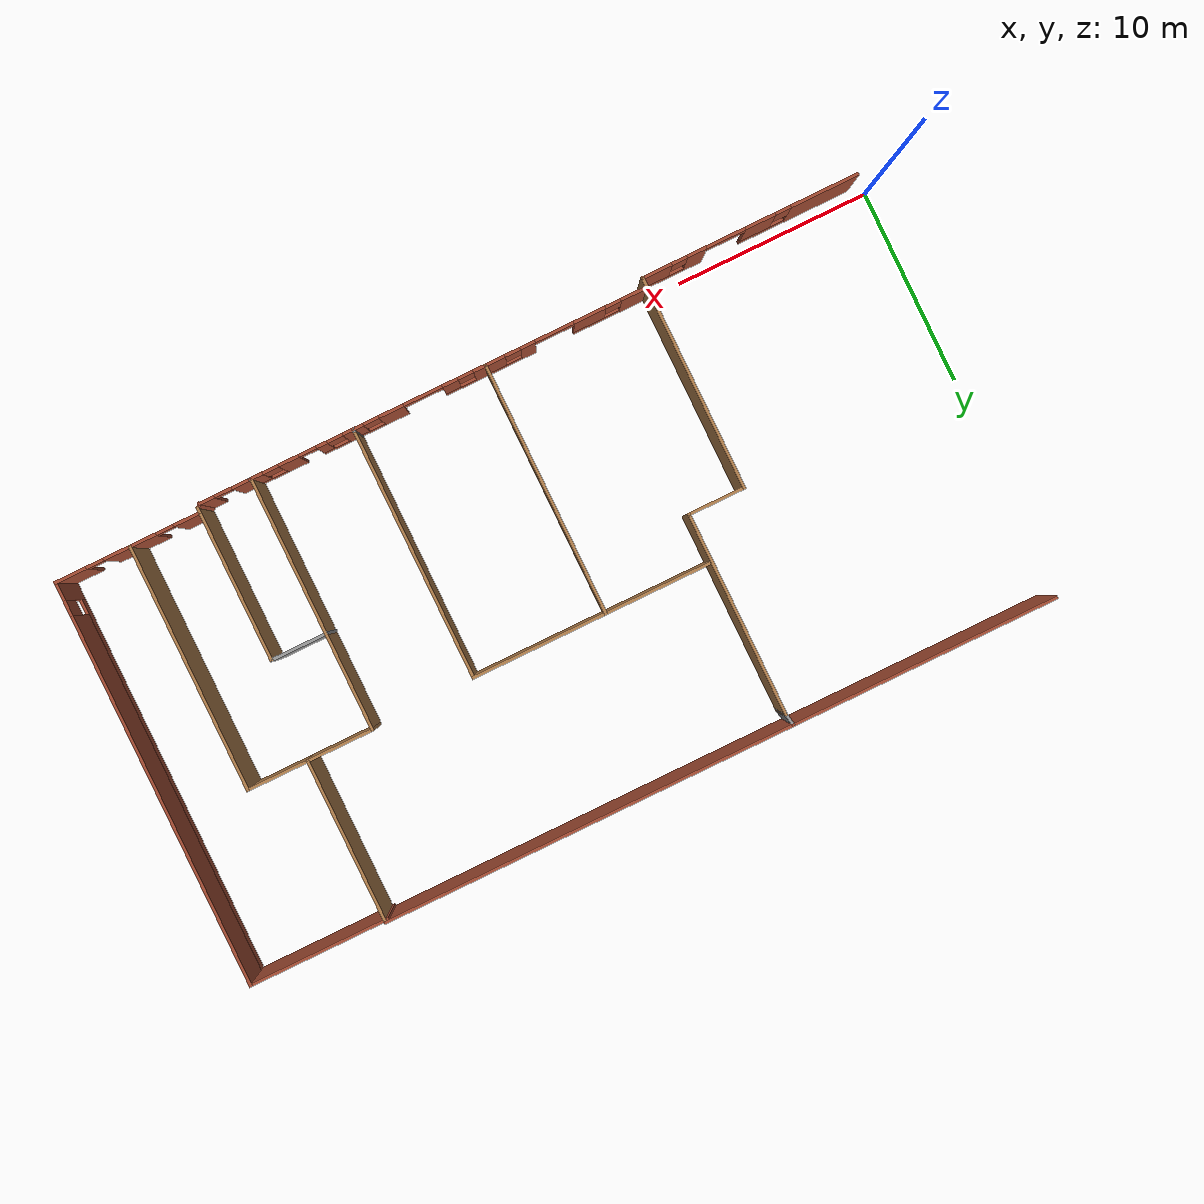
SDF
<sdf version="1.6">
 <model name="vital">
  <pose>12.2387 -3.95497 0 0 -0 0</pose>
  <link name="Wall_50">
   <pose>-5.91922 3.36796 0 0 -0 0</pose>
   <visual name="Wall_50_Visual_0">
    <pose>-3.87066 0 1.25 0 -0 0</pose>
    <geometry><box><size>3.50867 0.15 2.5</size></box></geometry>
    <material>
     <script><uri>file://media/materials/scripts/gazebo.material</uri><name>Gazebo/Bricks</name></script>
     <ambient>1 1 1 1</ambient>
    </material>
   </visual>
   <collision name="Wall_50_Collision_0">
    <geometry><box><size>3.50867 0.15 2.5</size></box></geometry>
    <pose>-3.87066 0 1.25 0 -0 0</pose>
   </collision>
   <visual name="Wall_50_Visual_1">
    <pose>2.75347 0 1.25 0 -0 0</pose>
    <geometry><box><size>1.00133 0.15 2.5</size></box></geometry>
    <material>
     <script><uri>file://media/materials/scripts/gazebo.material</uri><name>Gazebo/Bricks</name></script>
     <ambient>1 1 1 1</ambient>
    </material>
   </visual>
   <collision name="Wall_50_Collision_1">
    <geometry><box><size>1.00133 0.15 2.5</size></box></geometry>
    <pose>2.75347 0 1.25 0 -0 0</pose>
   </collision>
   <visual name="Wall_50_Visual_2">
    <pose>-0.931761 0 0.25 0 -0 0</pose>
    <geometry><box><size>2.36914 0.15 0.5</size></box></geometry>
    <material>
     <script><uri>file://media/materials/scripts/gazebo.material</uri><name>Gazebo/Bricks</name></script>
     <ambient>1 1 1 1</ambient>
    </material>
   </visual>
   <collision name="Wall_50_Collision_2">
    <geometry><box><size>2.36914 0.15 0.5</size></box></geometry>
    <pose>-0.931761 0 0.25 0 -0 0</pose>
   </collision>
   <visual name="Wall_50_Visual_3">
    <pose>4.43957 0 0.25 0 -0 0</pose>
    <geometry><box><size>2.37087 0.15 0.5</size></box></geometry>
    <material>
     <script><uri>file://media/materials/scripts/gazebo.material</uri><name>Gazebo/Bricks</name></script>
     <ambient>1 1 1 1</ambient>
    </material>
   </visual>
   <collision name="Wall_50_Collision_3">
    <geometry><box><size>2.37087 0.15 0.5</size></box></geometry>
    <pose>4.43957 0 0.25 0 -0 0</pose>
   </collision>
   <visual name="Wall_50_Visual_4">
    <pose>-0.531761 0 1.5 0 -0 0</pose>
    <geometry><box><size>1.56914 0.15 2</size></box></geometry>
    <material>
     <script><uri>file://media/materials/scripts/gazebo.material</uri><name>Gazebo/Bricks</name></script>
     <ambient>1 1 1 1</ambient>
    </material>
   </visual>
   <collision name="Wall_50_Collision_4">
    <geometry><box><size>1.56914 0.15 2</size></box></geometry>
    <pose>-0.531761 0 1.5 0 -0 0</pose>
   </collision>
   <visual name="Wall_50_Visual_5">
    <pose>-0.531761 0 1.5 0 -0 0</pose>
    <geometry><box><size>1.56914 0.15 2</size></box></geometry>
    <material>
     <script><uri>file://media/materials/scripts/gazebo.material</uri><name>Gazebo/Bricks</name></script>
     <ambient>1 1 1 1</ambient>
    </material>
   </visual>
   <collision name="Wall_50_Collision_5">
    <geometry><box><size>1.56914 0.15 2</size></box></geometry>
    <pose>-0.531761 0 1.5 0 -0 0</pose>
   </collision>
   <visual name="Wall_50_Visual_6">
    <pose>4.83957 0 1.5 0 -0 0</pose>
    <geometry><box><size>1.57087 0.15 2</size></box></geometry>
    <material>
     <script><uri>file://media/materials/scripts/gazebo.material</uri><name>Gazebo/Bricks</name></script>
     <ambient>1 1 1 1</ambient>
    </material>
   </visual>
   <collision name="Wall_50_Collision_6">
    <geometry><box><size>1.57087 0.15 2</size></box></geometry>
    <pose>4.83957 0 1.5 0 -0 0</pose>
   </collision>
   <visual name="Wall_50_Visual_7">
    <pose>-1.71633 0 1.9 0 -0 0</pose>
    <geometry><box><size>0.8 0.15 1.2</size></box></geometry>
    <material>
     <script><uri>file://media/materials/scripts/gazebo.material</uri><name>Gazebo/Bricks</name></script>
     <ambient>1 1 1 1</ambient>
    </material>
   </visual>
   <collision name="Wall_50_Collision_7">
    <geometry><box><size>0.8 0.15 1.2</size></box></geometry>
    <pose>-1.71633 0 1.9 0 -0 0</pose>
   </collision>
   <visual name="Wall_50_Visual_8">
    <pose>3.65413 0 1.9 0 -0 0</pose>
    <geometry><box><size>0.8 0.15 1.2</size></box></geometry>
    <material>
     <script><uri>file://media/materials/scripts/gazebo.material</uri><name>Gazebo/Bricks</name></script>
     <ambient>1 1 1 1</ambient>
    </material>
   </visual>
   <collision name="Wall_50_Collision_8">
    <geometry><box><size>0.8 0.15 1.2</size></box></geometry>
    <pose>3.65413 0 1.9 0 -0 0</pose>
   </collision>
   <visual name="Wall_50_Visual_9">
    <pose>1.25281 0 2.25 0 -0 0</pose>
    <geometry><box><size>2 0.15 0.5</size></box></geometry>
    <material>
     <script><uri>file://media/materials/scripts/gazebo.material</uri><name>Gazebo/Bricks</name></script>
     <ambient>1 1 1 1</ambient>
    </material>
   </visual>
   <collision name="Wall_50_Collision_9">
    <geometry><box><size>2 0.15 0.5</size></box></geometry>
    <pose>1.25281 0 2.25 0 -0 0</pose>
   </collision>
   <visual name="Wall_50_Visual_10">
    <pose>1.25281 0 2.25 0 -0 0</pose>
    <geometry><box><size>2 0.15 0.5</size></box></geometry>
    <material>
     <script><uri>file://media/materials/scripts/gazebo.material</uri><name>Gazebo/Bricks</name></script>
     <ambient>1 1 1 1</ambient>
    </material>
   </visual>
   <collision name="Wall_50_Collision_10">
    <geometry><box><size>2 0.15 0.5</size></box></geometry>
    <pose>1.25281 0 2.25 0 -0 0</pose>
   </collision>
  </link>
  <link name="Wall_51">
   <collision name="Wall_51_Collision">
    <geometry><box><size>11 0.15 2.5</size></box></geometry>
    <pose>0 0 1.25 0 -0 0</pose>
   </collision>
   <visual name="Wall_51_Visual">
    <pose>0 0 1.25 0 -0 0</pose>
    <geometry><box><size>11 0.15 2.5</size></box></geometry>
    <material>
     <script><uri>file://media/materials/scripts/gazebo.material</uri><name>Gazebo/Wood</name></script>
     <ambient>1 1 1 1</ambient>
    </material>
   </visual>
   <pose>-0.369221 8.79296 0 0 -0 1.5708</pose>
  </link>
  <link name="Wall_52">
   <collision name="Wall_52_Collision">
    <geometry><box><size>3 0.15 2.5</size></box></geometry>
    <pose>0 0 1.25 0 -0 0</pose>
   </collision>
   <visual name="Wall_52_Visual">
    <pose>0 0 1.25 0 -0 0</pose>
    <geometry><box><size>3 0.15 2.5</size></box></geometry>
    <material>
     <script><uri>file://media/materials/scripts/gazebo.material</uri><name>Gazebo/Wood</name></script>
     <ambient>1 1 1 1</ambient>
    </material>
   </visual>
   <pose>1.05578 14.218 0 0 -0 0</pose>
  </link>
  <link name="Wall_53">
   <collision name="Wall_53_Collision">
    <geometry><box><size>10.5 0.15 2.5</size></box></geometry>
    <pose>0 0 1.25 0 -0 0</pose>
   </collision>
   <visual name="Wall_53_Visual">
    <pose>0 0 1.25 0 -0 0</pose>
    <geometry><box><size>10.5 0.15 2.5</size></box></geometry>
    <material>
     <script><uri>file://media/materials/scripts/gazebo.material</uri><name>Gazebo/Wood</name></script>
     <ambient>1 1 1 1</ambient>
    </material>
   </visual>
   <pose>2.48078 19.393 0 0 -0 1.5708</pose>
  </link>
  <link name="Wall_60">
   <collision name="Wall_60_Collision">
    <geometry><box><size>13.75 0.15 2.5</size></box></geometry>
    <pose>0 0 1.25 0 -0 0</pose>
   </collision>
   <visual name="Wall_60_Visual">
    <pose>0 0 1.25 0 -0 0</pose>
    <geometry><box><size>13.75 0.15 2.5</size></box></geometry>
    <material>
     <script><uri>file://media/materials/scripts/gazebo.material</uri><name>Gazebo/Bricks</name></script>
     <ambient>1 1 1 1</ambient>
    </material>
   </visual>
   <pose>-4.41922 25.168 0 0 -0 0</pose>
  </link>
  <link name="Wall_62">
   <collision name="Wall_62_Collision">
    <geometry><box><size>0.758276 0.15 2.5</size></box></geometry>
    <pose>0 0 1.25 0 -0 0</pose>
   </collision>
   <visual name="Wall_62_Visual">
    <pose>0 0 1.25 0 -0 0</pose>
    <geometry><box><size>0.758276 0.15 2.5</size></box></geometry>
    <material>
     <script><uri>file://media/materials/scripts/gazebo.material</uri><name>Gazebo/Grey</name></script>
     <ambient>1 1 1 1</ambient>
    </material>
   </visual>
   <pose>2.43078 24.868 0 0 -0 1.73595</pose>
  </link>
  <link name="Wall_64">
   <pose>3.81101 3.83144 0 0 -0 0</pose>
   <visual name="Wall_64_Visual_0">
    <pose>-3.53221 0 1.25 0 -0 0</pose>
    <geometry><box><size>1.43558 0.15 2.5</size></box></geometry>
    <material>
     <script><uri>file://media/materials/scripts/gazebo.material</uri><name>Gazebo/Bricks</name></script>
     <ambient>1 1 1 1</ambient>
    </material>
   </visual>
   <collision name="Wall_64_Collision_0">
    <geometry><box><size>1.43558 0.15 2.5</size></box></geometry>
    <pose>-3.53221 0 1.25 0 -0 0</pose>
   </collision>
   <visual name="Wall_64_Visual_1">
    <pose>2.011 0 1.25 0 -0 0</pose>
    <geometry><box><size>0.764597 0.15 2.5</size></box></geometry>
    <material>
     <script><uri>file://media/materials/scripts/gazebo.material</uri><name>Gazebo/Bricks</name></script>
     <ambient>1 1 1 1</ambient>
    </material>
   </visual>
   <collision name="Wall_64_Collision_1">
    <geometry><box><size>0.764597 0.15 2.5</size></box></geometry>
    <pose>2.011 0 1.25 0 -0 0</pose>
   </collision>
   <visual name="Wall_64_Visual_2">
    <pose>-1.59286 0 0.25 0 -0 0</pose>
    <geometry><box><size>2.44312 0.15 0.5</size></box></geometry>
    <material>
     <script><uri>file://media/materials/scripts/gazebo.material</uri><name>Gazebo/Bricks</name></script>
     <ambient>1 1 1 1</ambient>
    </material>
   </visual>
   <collision name="Wall_64_Collision_2">
    <geometry><box><size>2.44312 0.15 0.5</size></box></geometry>
    <pose>-1.59286 0 0.25 0 -0 0</pose>
   </collision>
   <visual name="Wall_64_Visual_3">
    <pose>3.32165 0 0.25 0 -0 0</pose>
    <geometry><box><size>1.8567 0.15 0.5</size></box></geometry>
    <material>
     <script><uri>file://media/materials/scripts/gazebo.material</uri><name>Gazebo/Bricks</name></script>
     <ambient>1 1 1 1</ambient>
    </material>
   </visual>
   <collision name="Wall_64_Collision_3">
    <geometry><box><size>1.8567 0.15 0.5</size></box></geometry>
    <pose>3.32165 0 0.25 0 -0 0</pose>
   </collision>
   <visual name="Wall_64_Visual_4">
    <pose>-1.19286 0 1.5 0 -0 0</pose>
    <geometry><box><size>1.64312 0.15 2</size></box></geometry>
    <material>
     <script><uri>file://media/materials/scripts/gazebo.material</uri><name>Gazebo/Bricks</name></script>
     <ambient>1 1 1 1</ambient>
    </material>
   </visual>
   <collision name="Wall_64_Collision_4">
    <geometry><box><size>1.64312 0.15 2</size></box></geometry>
    <pose>-1.19286 0 1.5 0 -0 0</pose>
   </collision>
   <visual name="Wall_64_Visual_5">
    <pose>-1.19286 0 1.5 0 -0 0</pose>
    <geometry><box><size>1.64312 0.15 2</size></box></geometry>
    <material>
     <script><uri>file://media/materials/scripts/gazebo.material</uri><name>Gazebo/Bricks</name></script>
     <ambient>1 1 1 1</ambient>
    </material>
   </visual>
   <collision name="Wall_64_Collision_5">
    <geometry><box><size>1.64312 0.15 2</size></box></geometry>
    <pose>-1.19286 0 1.5 0 -0 0</pose>
   </collision>
   <visual name="Wall_64_Visual_6">
    <pose>3.72165 0 1.5 0 -0 0</pose>
    <geometry><box><size>1.0567 0.15 2</size></box></geometry>
    <material>
     <script><uri>file://media/materials/scripts/gazebo.material</uri><name>Gazebo/Bricks</name></script>
     <ambient>1 1 1 1</ambient>
    </material>
   </visual>
   <collision name="Wall_64_Collision_6">
    <geometry><box><size>1.0567 0.15 2</size></box></geometry>
    <pose>3.72165 0 1.5 0 -0 0</pose>
   </collision>
   <visual name="Wall_64_Visual_7">
    <pose>-2.41442 0 1.9 0 -0 0</pose>
    <geometry><box><size>0.8 0.15 1.2</size></box></geometry>
    <material>
     <script><uri>file://media/materials/scripts/gazebo.material</uri><name>Gazebo/Bricks</name></script>
     <ambient>1 1 1 1</ambient>
    </material>
   </visual>
   <collision name="Wall_64_Collision_7">
    <geometry><box><size>0.8 0.15 1.2</size></box></geometry>
    <pose>-2.41442 0 1.9 0 -0 0</pose>
   </collision>
   <visual name="Wall_64_Visual_8">
    <pose>2.7933 0 1.9 0 -0 0</pose>
    <geometry><box><size>0.8 0.15 1.2</size></box></geometry>
    <material>
     <script><uri>file://media/materials/scripts/gazebo.material</uri><name>Gazebo/Bricks</name></script>
     <ambient>1 1 1 1</ambient>
    </material>
   </visual>
   <collision name="Wall_64_Collision_8">
    <geometry><box><size>0.8 0.15 1.2</size></box></geometry>
    <pose>2.7933 0 1.9 0 -0 0</pose>
   </collision>
   <visual name="Wall_64_Visual_9">
    <pose>0.6287 0 2.25 0 -0 0</pose>
    <geometry><box><size>2 0.15 0.5</size></box></geometry>
    <material>
     <script><uri>file://media/materials/scripts/gazebo.material</uri><name>Gazebo/Bricks</name></script>
     <ambient>1 1 1 1</ambient>
    </material>
   </visual>
   <collision name="Wall_64_Collision_9">
    <geometry><box><size>2 0.15 0.5</size></box></geometry>
    <pose>0.6287 0 2.25 0 -0 0</pose>
   </collision>
   <visual name="Wall_64_Visual_10">
    <pose>0.6287 0 2.25 0 -0 0</pose>
    <geometry><box><size>2 0.15 0.5</size></box></geometry>
    <material>
     <script><uri>file://media/materials/scripts/gazebo.material</uri><name>Gazebo/Bricks</name></script>
     <ambient>1 1 1 1</ambient>
    </material>
   </visual>
   <collision name="Wall_64_Collision_10">
    <geometry><box><size>2 0.15 0.5</size></box></geometry>
    <pose>0.6287 0 2.25 0 -0 0</pose>
   </collision>
  </link>
  <link name="Wall_65">
   <collision name="Wall_65_Collision">
    <geometry><box><size>13 0.15 2.5</size></box></geometry>
    <pose>0 0 1.25 0 -0 0</pose>
   </collision>
   <visual name="Wall_65_Visual">
    <pose>0 0 1.25 0 -0 0</pose>
    <geometry><box><size>13 0.15 2.5</size></box></geometry>
    <material>
     <script><uri>file://media/materials/scripts/gazebo.material</uri><name>Gazebo/Wood</name></script>
     <ambient>1 1 1 1</ambient>
    </material>
   </visual>
   <pose>7.98601 10.2564 0 0 -0 1.5708</pose>
  </link>
  <link name="Wall_66">
   <collision name="Wall_66_Collision">
    <geometry><box><size>5.5 0.15 2.5</size></box></geometry>
    <pose>0 0 1.25 0 -0 0</pose>
   </collision>
   <visual name="Wall_66_Visual">
    <pose>0 0 1.25 0 -0 0</pose>
    <geometry><box><size>5.5 0.15 2.5</size></box></geometry>
    <material>
     <script><uri>file://media/materials/scripts/gazebo.material</uri><name>Gazebo/Wood</name></script>
     <ambient>1 1 1 1</ambient>
    </material>
   </visual>
   <pose>5.31101 16.6814 0 0 -0 3.14159</pose>
  </link>
  <link name="Wall_68">
   <collision name="Wall_68_Collision">
    <geometry><box><size>7 0.15 2.5</size></box></geometry>
    <pose>0 0 1.25 0 -0 0</pose>
   </collision>
   <visual name="Wall_68_Visual">
    <pose>0 0 1.25 0 -0 0</pose>
    <geometry><box><size>7 0.15 2.5</size></box></geometry>
    <material>
     <script><uri>file://media/materials/scripts/gazebo.material</uri><name>Gazebo/Wood</name></script>
     <ambient>1 1 1 1</ambient>
    </material>
   </visual>
   <pose>11.411 16.6814 0 0 -0 0</pose>
  </link>
  <link name="Wall_69">
   <collision name="Wall_69_Collision">
    <geometry><box><size>12.75 0.15 2.5</size></box></geometry>
    <pose>0 0 1.25 0 -0 0</pose>
   </collision>
   <visual name="Wall_69_Visual">
    <pose>0 0 1.25 0 -0 0</pose>
    <geometry><box><size>12.75 0.15 2.5</size></box></geometry>
    <material>
     <script><uri>file://media/materials/scripts/gazebo.material</uri><name>Gazebo/Wood</name></script>
     <ambient>1 1 1 1</ambient>
    </material>
   </visual>
   <pose>14.836 10.3814 0 0 0 -1.5708</pose>
  </link>
  <link name="Wall_70">
   <collision name="Wall_70_Collision">
    <geometry><box><size>0.25 0.15 2.5</size></box></geometry>
    <pose>0 0 1.25 0 -0 0</pose>
   </collision>
   <visual name="Wall_70_Visual">
    <pose>0 0 1.25 0 -0 0</pose>
    <geometry><box><size>0.25 0.15 2.5</size></box></geometry>
    <material>
     <script><uri>file://media/materials/scripts/gazebo.material</uri><name>Gazebo/Grey</name></script>
     <ambient>1 1 1 1</ambient>
    </material>
   </visual>
   <pose>14.836 4.03144 0 0 0 -1.5708</pose>
  </link>
  <link name="Wall_72">
   <pose>11.411 3.83144 0 0 -0 0</pose>
   <visual name="Wall_72_Visual_0">
    <pose>-3.13279 0 1.25 0 -0 0</pose>
    <geometry><box><size>0.734415 0.15 2.5</size></box></geometry>
    <material>
     <script><uri>file://media/materials/scripts/gazebo.material</uri><name>Gazebo/Bricks</name></script>
     <ambient>1 1 1 1</ambient>
    </material>
   </visual>
   <collision name="Wall_72_Collision_0">
    <geometry><box><size>0.734415 0.15 2.5</size></box></geometry>
    <pose>-3.13279 0 1.25 0 -0 0</pose>
   </collision>
   <visual name="Wall_72_Visual_1">
    <pose>1.47853 0 1.25 0 -0 0</pose>
    <geometry><box><size>1.27624 0.15 2.5</size></box></geometry>
    <material>
     <script><uri>file://media/materials/scripts/gazebo.material</uri><name>Gazebo/Bricks</name></script>
     <ambient>1 1 1 1</ambient>
    </material>
   </visual>
   <collision name="Wall_72_Collision_1">
    <geometry><box><size>1.27624 0.15 2.5</size></box></geometry>
    <pose>1.47853 0 1.25 0 -0 0</pose>
   </collision>
   <visual name="Wall_72_Visual_2">
    <pose>-1.96259 0 0.25 0 -0 0</pose>
    <geometry><box><size>1.606 0.15 0.5</size></box></geometry>
    <material>
     <script><uri>file://media/materials/scripts/gazebo.material</uri><name>Gazebo/Bricks</name></script>
     <ambient>1 1 1 1</ambient>
    </material>
   </visual>
   <collision name="Wall_72_Collision_2">
    <geometry><box><size>1.606 0.15 0.5</size></box></geometry>
    <pose>-1.96259 0 0.25 0 -0 0</pose>
   </collision>
   <visual name="Wall_72_Visual_3">
    <pose>2.80833 0 0.25 0 -0 0</pose>
    <geometry><box><size>1.38335 0.15 0.5</size></box></geometry>
    <material>
     <script><uri>file://media/materials/scripts/gazebo.material</uri><name>Gazebo/Bricks</name></script>
     <ambient>1 1 1 1</ambient>
    </material>
   </visual>
   <collision name="Wall_72_Collision_3">
    <geometry><box><size>1.38335 0.15 0.5</size></box></geometry>
    <pose>2.80833 0 0.25 0 -0 0</pose>
   </collision>
   <visual name="Wall_72_Visual_4">
    <pose>-1.56259 0 1.5 0 -0 0</pose>
    <geometry><box><size>0.805997 0.15 2</size></box></geometry>
    <material>
     <script><uri>file://media/materials/scripts/gazebo.material</uri><name>Gazebo/Bricks</name></script>
     <ambient>1 1 1 1</ambient>
    </material>
   </visual>
   <collision name="Wall_72_Collision_4">
    <geometry><box><size>0.805997 0.15 2</size></box></geometry>
    <pose>-1.56259 0 1.5 0 -0 0</pose>
   </collision>
   <visual name="Wall_72_Visual_5">
    <pose>-1.56259 0 1.5 0 -0 0</pose>
    <geometry><box><size>0.805997 0.15 2</size></box></geometry>
    <material>
     <script><uri>file://media/materials/scripts/gazebo.material</uri><name>Gazebo/Bricks</name></script>
     <ambient>1 1 1 1</ambient>
    </material>
   </visual>
   <collision name="Wall_72_Collision_5">
    <geometry><box><size>0.805997 0.15 2</size></box></geometry>
    <pose>-1.56259 0 1.5 0 -0 0</pose>
   </collision>
   <visual name="Wall_72_Visual_6">
    <pose>3.20833 0 1.5 0 -0 0</pose>
    <geometry><box><size>0.583349 0.15 2</size></box></geometry>
    <material>
     <script><uri>file://media/materials/scripts/gazebo.material</uri><name>Gazebo/Bricks</name></script>
     <ambient>1 1 1 1</ambient>
    </material>
   </visual>
   <collision name="Wall_72_Collision_6">
    <geometry><box><size>0.583349 0.15 2</size></box></geometry>
    <pose>3.20833 0 1.5 0 -0 0</pose>
   </collision>
   <visual name="Wall_72_Visual_7">
    <pose>-2.36558 0 1.9 0 -0 0</pose>
    <geometry><box><size>0.8 0.15 1.2</size></box></geometry>
    <material>
     <script><uri>file://media/materials/scripts/gazebo.material</uri><name>Gazebo/Bricks</name></script>
     <ambient>1 1 1 1</ambient>
    </material>
   </visual>
   <collision name="Wall_72_Collision_7">
    <geometry><box><size>0.8 0.15 1.2</size></box></geometry>
    <pose>-2.36558 0 1.9 0 -0 0</pose>
   </collision>
   <visual name="Wall_72_Visual_8">
    <pose>2.51665 0 1.9 0 -0 0</pose>
    <geometry><box><size>0.8 0.15 1.2</size></box></geometry>
    <material>
     <script><uri>file://media/materials/scripts/gazebo.material</uri><name>Gazebo/Bricks</name></script>
     <ambient>1 1 1 1</ambient>
    </material>
   </visual>
   <collision name="Wall_72_Collision_8">
    <geometry><box><size>0.8 0.15 1.2</size></box></geometry>
    <pose>2.51665 0 1.9 0 -0 0</pose>
   </collision>
   <visual name="Wall_72_Visual_9">
    <pose>-0.159588 0 2.25 0 -0 0</pose>
    <geometry><box><size>2 0.15 0.5</size></box></geometry>
    <material>
     <script><uri>file://media/materials/scripts/gazebo.material</uri><name>Gazebo/Bricks</name></script>
     <ambient>1 1 1 1</ambient>
    </material>
   </visual>
   <collision name="Wall_72_Collision_9">
    <geometry><box><size>2 0.15 0.5</size></box></geometry>
    <pose>-0.159588 0 2.25 0 -0 0</pose>
   </collision>
   <visual name="Wall_72_Visual_10">
    <pose>-0.159588 0 2.25 0 -0 0</pose>
    <geometry><box><size>2 0.15 0.5</size></box></geometry>
    <material>
     <script><uri>file://media/materials/scripts/gazebo.material</uri><name>Gazebo/Bricks</name></script>
     <ambient>1 1 1 1</ambient>
    </material>
   </visual>
   <collision name="Wall_72_Collision_10">
    <geometry><box><size>2 0.15 0.5</size></box></geometry>
    <pose>-0.159588 0 2.25 0 -0 0</pose>
   </collision>
  </link>
  <link name="Wall_73">
   <collision name="Wall_73_Collision">
    <geometry><box><size>0.15 0.15 2.5</size></box></geometry>
    <pose>0 0 1.25 0 -0 0</pose>
   </collision>
   <visual name="Wall_73_Visual">
    <pose>0 0 1.25 0 -0 0</pose>
    <geometry><box><size>0.15 0.15 2.5</size></box></geometry>
    <material>
     <script><uri>file://media/materials/scripts/gazebo.material</uri><name>Gazebo/Grey</name></script>
     <ambient>1 1 1 1</ambient>
    </material>
   </visual>
   <pose>14.836 3.83144 0 0 -0 0</pose>
  </link>
  <link name="Wall_75">
   <collision name="Wall_75_Collision">
    <geometry><box><size>21.25 0.15 2.5</size></box></geometry>
    <pose>0 0 1.25 0 -0 0</pose>
   </collision>
   <visual name="Wall_75_Visual">
    <pose>0 0 1.25 0 -0 0</pose>
    <geometry><box><size>21.25 0.15 2.5</size></box></geometry>
    <material>
     <script><uri>file://media/materials/scripts/gazebo.material</uri><name>Gazebo/Bricks</name></script>
     <ambient>1 1 1 1</ambient>
    </material>
   </visual>
   <pose>12.9308 25.168 0 0 -0 0</pose>
  </link>
  <link name="Wall_76">
   <collision name="Wall_76_Collision">
    <geometry><box><size>8.5 0.15 2.5</size></box></geometry>
    <pose>0 0 1.25 0 -0 0</pose>
   </collision>
   <visual name="Wall_76_Visual">
    <pose>0 0 1.25 0 -0 0</pose>
    <geometry><box><size>8.5 0.15 2.5</size></box></geometry>
    <material>
     <script><uri>file://media/materials/scripts/gazebo.material</uri><name>Gazebo/Wood</name></script>
     <ambient>1 1 1 1</ambient>
    </material>
   </visual>
   <pose>23.4808 20.993 0 0 0 -1.5708</pose>
  </link>
  <link name="Wall_77">
   <collision name="Wall_77_Collision">
    <geometry><box><size>3.5 0.15 2.5</size></box></geometry>
    <pose>0 0 1.25 0 -0 0</pose>
   </collision>
   <visual name="Wall_77_Visual">
    <pose>0 0 1.25 0 -0 0</pose>
    <geometry><box><size>3.5 0.15 2.5</size></box></geometry>
    <material>
     <script><uri>file://media/materials/scripts/gazebo.material</uri><name>Gazebo/Wood</name></script>
     <ambient>1 1 1 1</ambient>
    </material>
   </visual>
   <pose>21.8058 16.818 0 0 -0 3.14159</pose>
  </link>
  <link name="Wall_78">
   <collision name="Wall_78_Collision">
    <geometry><box><size>13 0.15 2.5</size></box></geometry>
    <pose>0 0 1.25 0 -0 0</pose>
   </collision>
   <visual name="Wall_78_Visual">
    <pose>0 0 1.25 0 -0 0</pose>
    <geometry><box><size>13 0.15 2.5</size></box></geometry>
    <material>
     <script><uri>file://media/materials/scripts/gazebo.material</uri><name>Gazebo/Wood</name></script>
     <ambient>1 1 1 1</ambient>
    </material>
   </visual>
   <pose>20.1308 10.393 0 0 0 -1.5708</pose>
  </link>
  <link name="Wall_80">
   <pose>17.511 3.83144 0 0 -0 0</pose>
   <visual name="Wall_80_Visual_0">
    <pose>-2.43091 0 1.25 0 -0 0</pose>
    <geometry><box><size>0.638177 0.15 2.5</size></box></geometry>
    <material>
     <script><uri>file://media/materials/scripts/gazebo.material</uri><name>Gazebo/Bricks</name></script>
     <ambient>1 1 1 1</ambient>
    </material>
   </visual>
   <collision name="Wall_80_Collision_0">
    <geometry><box><size>0.638177 0.15 2.5</size></box></geometry>
    <pose>-2.43091 0 1.25 0 -0 0</pose>
   </collision>
   <visual name="Wall_80_Visual_1">
    <pose>0.691495 0 1.25 0 -0 0</pose>
    <geometry><box><size>1.06575 0.15 2.5</size></box></geometry>
    <material>
     <script><uri>file://media/materials/scripts/gazebo.material</uri><name>Gazebo/Bricks</name></script>
     <ambient>1 1 1 1</ambient>
    </material>
   </visual>
   <collision name="Wall_80_Collision_1">
    <geometry><box><size>1.06575 0.15 2.5</size></box></geometry>
    <pose>0.691495 0 1.25 0 -0 0</pose>
   </collision>
   <visual name="Wall_80_Visual_2">
    <pose>-1.4266 0 0.25 0 -0 0</pose>
    <geometry><box><size>1.37044 0.15 0.5</size></box></geometry>
    <material>
     <script><uri>file://media/materials/scripts/gazebo.material</uri><name>Gazebo/Bricks</name></script>
     <ambient>1 1 1 1</ambient>
    </material>
   </visual>
   <collision name="Wall_80_Collision_2">
    <geometry><box><size>1.37044 0.15 0.5</size></box></geometry>
    <pose>-1.4266 0 0.25 0 -0 0</pose>
   </collision>
   <visual name="Wall_80_Visual_3">
    <pose>1.98719 0 0.25 0 -0 0</pose>
    <geometry><box><size>1.52563 0.15 0.5</size></box></geometry>
    <material>
     <script><uri>file://media/materials/scripts/gazebo.material</uri><name>Gazebo/Bricks</name></script>
     <ambient>1 1 1 1</ambient>
    </material>
   </visual>
   <collision name="Wall_80_Collision_3">
    <geometry><box><size>1.52563 0.15 0.5</size></box></geometry>
    <pose>1.98719 0 0.25 0 -0 0</pose>
   </collision>
   <visual name="Wall_80_Visual_4">
    <pose>-1.0266 0 1.5 0 -0 0</pose>
    <geometry><box><size>0.570441 0.15 2</size></box></geometry>
    <material>
     <script><uri>file://media/materials/scripts/gazebo.material</uri><name>Gazebo/Bricks</name></script>
     <ambient>1 1 1 1</ambient>
    </material>
   </visual>
   <collision name="Wall_80_Collision_4">
    <geometry><box><size>0.570441 0.15 2</size></box></geometry>
    <pose>-1.0266 0 1.5 0 -0 0</pose>
   </collision>
   <visual name="Wall_80_Visual_5">
    <pose>-1.0266 0 1.5 0 -0 0</pose>
    <geometry><box><size>0.570441 0.15 2</size></box></geometry>
    <material>
     <script><uri>file://media/materials/scripts/gazebo.material</uri><name>Gazebo/Bricks</name></script>
     <ambient>1 1 1 1</ambient>
    </material>
   </visual>
   <collision name="Wall_80_Collision_5">
    <geometry><box><size>0.570441 0.15 2</size></box></geometry>
    <pose>-1.0266 0 1.5 0 -0 0</pose>
   </collision>
   <visual name="Wall_80_Visual_6">
    <pose>2.38719 0 1.5 0 -0 0</pose>
    <geometry><box><size>0.725628 0.15 2</size></box></geometry>
    <material>
     <script><uri>file://media/materials/scripts/gazebo.material</uri><name>Gazebo/Bricks</name></script>
     <ambient>1 1 1 1</ambient>
    </material>
   </visual>
   <collision name="Wall_80_Collision_6">
    <geometry><box><size>0.725628 0.15 2</size></box></geometry>
    <pose>2.38719 0 1.5 0 -0 0</pose>
   </collision>
   <visual name="Wall_80_Visual_7">
    <pose>-1.71182 0 1.9 0 -0 0</pose>
    <geometry><box><size>0.8 0.15 1.2</size></box></geometry>
    <material>
     <script><uri>file://media/materials/scripts/gazebo.material</uri><name>Gazebo/Bricks</name></script>
     <ambient>1 1 1 1</ambient>
    </material>
   </visual>
   <collision name="Wall_80_Collision_7">
    <geometry><box><size>0.8 0.15 1.2</size></box></geometry>
    <pose>-1.71182 0 1.9 0 -0 0</pose>
   </collision>
   <visual name="Wall_80_Visual_8">
    <pose>1.62437 0 1.9 0 -0 0</pose>
    <geometry><box><size>0.8 0.15 1.2</size></box></geometry>
    <material>
     <script><uri>file://media/materials/scripts/gazebo.material</uri><name>Gazebo/Bricks</name></script>
     <ambient>1 1 1 1</ambient>
    </material>
   </visual>
   <collision name="Wall_80_Collision_8">
    <geometry><box><size>0.8 0.15 1.2</size></box></geometry>
    <pose>1.62437 0 1.9 0 -0 0</pose>
   </collision>
   <visual name="Wall_80_Visual_9">
    <pose>-0.291382 0 2.25 0 -0 0</pose>
    <geometry><box><size>0.9 0.15 0.5</size></box></geometry>
    <material>
     <script><uri>file://media/materials/scripts/gazebo.material</uri><name>Gazebo/Bricks</name></script>
     <ambient>1 1 1 1</ambient>
    </material>
   </visual>
   <collision name="Wall_80_Collision_9">
    <geometry><box><size>0.9 0.15 0.5</size></box></geometry>
    <pose>-0.291382 0 2.25 0 -0 0</pose>
   </collision>
   <visual name="Wall_80_Visual_10">
    <pose>-0.291382 0 2.25 0 -0 0</pose>
    <geometry><box><size>0.9 0.15 0.5</size></box></geometry>
    <material>
     <script><uri>file://media/materials/scripts/gazebo.material</uri><name>Gazebo/Bricks</name></script>
     <ambient>1 1 1 1</ambient>
    </material>
   </visual>
   <collision name="Wall_80_Collision_10">
    <geometry><box><size>0.9 0.15 0.5</size></box></geometry>
    <pose>-0.291382 0 2.25 0 -0 0</pose>
   </collision>
  </link>
  <link name="Wall_81">
   <collision name="Wall_81_Collision">
    <geometry><box><size>0.15 0.15 2.5</size></box></geometry>
    <pose>0 0 1.25 0 -0 0</pose>
   </collision>
   <visual name="Wall_81_Visual">
    <pose>0 0 1.25 0 -0 0</pose>
    <geometry><box><size>0.15 0.15 2.5</size></box></geometry>
    <material>
     <script><uri>file://media/materials/scripts/gazebo.material</uri><name>Gazebo/Grey</name></script>
     <ambient>1 1 1 1</ambient>
    </material>
   </visual>
   <pose>20.186 3.83144 0 0 -0 0</pose>
  </link>
  <link name="Wall_83">
   <collision name="Wall_83_Collision">
    <geometry><box><size>3 0.15 2.5</size></box></geometry>
    <pose>0 0 1.25 0 -0 0</pose>
   </collision>
   <visual name="Wall_83_Visual">
    <pose>0 0 1.25 0 -0 0</pose>
    <geometry><box><size>3 0.15 2.5</size></box></geometry>
    <material>
     <script><uri>file://media/materials/scripts/gazebo.material</uri><name>Gazebo/Grey</name></script>
     <ambient>1 1 1 1</ambient>
    </material>
   </visual>
   <pose>21.5302 11.8466 0 0 -0 0</pose>
  </link>
  <link name="Wall_84">
   <collision name="Wall_84_Collision">
    <geometry><box><size>8 0.15 2.5</size></box></geometry>
    <pose>0 0 1.25 0 -0 0</pose>
   </collision>
   <visual name="Wall_84_Visual">
    <pose>0 0 1.25 0 -0 0</pose>
    <geometry><box><size>8 0.15 2.5</size></box></geometry>
    <material>
     <script><uri>file://media/materials/scripts/gazebo.material</uri><name>Gazebo/Wood</name></script>
     <ambient>1 1 1 1</ambient>
    </material>
   </visual>
   <pose>22.9552 7.92155 0 0 0 -1.5708</pose>
  </link>
  <link name="Wall_87">
   <pose>21.486 3.83144 0 0 -0 0</pose>
   <visual name="Wall_87_Visual_0">
    <pose>-0.861452 0 1.25 0 -0 0</pose>
    <geometry><box><size>1.0271 0.15 2.5</size></box></geometry>
    <material>
     <script><uri>file://media/materials/scripts/gazebo.material</uri><name>Gazebo/Bricks</name></script>
     <ambient>1 1 1 1</ambient>
    </material>
   </visual>
   <collision name="Wall_87_Collision_0">
    <geometry><box><size>1.0271 0.15 2.5</size></box></geometry>
    <pose>-0.861452 0 1.25 0 -0 0</pose>
   </collision>
   <visual name="Wall_87_Visual_1">
    <pose>0.963548 0 1.25 0 -0 0</pose>
    <geometry><box><size>0.822903 0.15 2.5</size></box></geometry>
    <material>
     <script><uri>file://media/materials/scripts/gazebo.material</uri><name>Gazebo/Bricks</name></script>
     <ambient>1 1 1 1</ambient>
    </material>
   </visual>
   <collision name="Wall_87_Collision_1">
    <geometry><box><size>0.822903 0.15 2.5</size></box></geometry>
    <pose>0.963548 0 1.25 0 -0 0</pose>
   </collision>
   <visual name="Wall_87_Visual_2">
    <pose>0.102097 0 2.25 0 -0 0</pose>
    <geometry><box><size>0.9 0.15 0.5</size></box></geometry>
    <material>
     <script><uri>file://media/materials/scripts/gazebo.material</uri><name>Gazebo/Bricks</name></script>
     <ambient>1 1 1 1</ambient>
    </material>
   </visual>
   <collision name="Wall_87_Collision_2">
    <geometry><box><size>0.9 0.15 0.5</size></box></geometry>
    <pose>0.102097 0 2.25 0 -0 0</pose>
   </collision>
  </link>
  <link name="Wall_88">
   <collision name="Wall_88_Collision">
    <geometry><box><size>0.38642 0.15 2.5</size></box></geometry>
    <pose>0 0 1.25 0 -0 0</pose>
   </collision>
   <visual name="Wall_88_Visual">
    <pose>0 0 1.25 0 -0 0</pose>
    <geometry><box><size>0.38642 0.15 2.5</size></box></geometry>
    <material>
     <script><uri>file://media/materials/scripts/gazebo.material</uri><name>Gazebo/Bricks</name></script>
     <ambient>1 1 1 1</ambient>
    </material>
   </visual>
   <pose>22.8706 3.914 0 0 -0 0.773112</pose>
  </link>
  <link name="Wall_90">
   <collision name="Wall_90_Collision">
    <geometry><box><size>3.25 0.15 2.5</size></box></geometry>
    <pose>0 0 1.25 0 -0 0</pose>
   </collision>
   <visual name="Wall_90_Visual">
    <pose>0 0 1.25 0 -0 0</pose>
    <geometry><box><size>3.25 0.15 2.5</size></box></geometry>
    <material>
     <script><uri>file://media/materials/scripts/gazebo.material</uri><name>Gazebo/Wood</name></script>
     <ambient>1 1 1 1</ambient>
    </material>
   </visual>
   <pose>25.0308 16.818 0 0 -0 0</pose>
  </link>
  <link name="Wall_91">
   <collision name="Wall_91_Collision">
    <geometry><box><size>12.75 0.15 2.5</size></box></geometry>
    <pose>0 0 1.25 0 -0 0</pose>
   </collision>
   <visual name="Wall_91_Visual">
    <pose>0 0 1.25 0 -0 0</pose>
    <geometry><box><size>12.75 0.15 2.5</size></box></geometry>
    <material>
     <script><uri>file://media/materials/scripts/gazebo.material</uri><name>Gazebo/Wood</name></script>
     <ambient>1 1 1 1</ambient>
    </material>
   </visual>
   <pose>26.5808 10.518 0 0 0 -1.5708</pose>
  </link>
  <link name="Wall_92">
   <pose>24.7808 4.21796 0 0 -0 3.14159</pose>
   <visual name="Wall_92_Visual_0">
    <pose>-1.16589 0 1.25 0 -0 0</pose>
    <geometry><box><size>1.41822 0.15 2.5</size></box></geometry>
    <material>
     <script><uri>file://media/materials/scripts/gazebo.material</uri><name>Gazebo/Bricks</name></script>
     <ambient>1 1 1 1</ambient>
    </material>
   </visual>
   <collision name="Wall_92_Collision_0">
    <geometry><box><size>1.41822 0.15 2.5</size></box></geometry>
    <pose>-1.16589 0 1.25 0 -0 0</pose>
   </collision>
   <visual name="Wall_92_Visual_1">
    <pose>1.15911 0 1.25 0 -0 0</pose>
    <geometry><box><size>1.43178 0.15 2.5</size></box></geometry>
    <material>
     <script><uri>file://media/materials/scripts/gazebo.material</uri><name>Gazebo/Bricks</name></script>
     <ambient>1 1 1 1</ambient>
    </material>
   </visual>
   <collision name="Wall_92_Collision_1">
    <geometry><box><size>1.43178 0.15 2.5</size></box></geometry>
    <pose>1.15911 0 1.25 0 -0 0</pose>
   </collision>
   <visual name="Wall_92_Visual_2">
    <pose>-0.006779 0 2.25 0 -0 0</pose>
    <geometry><box><size>0.9 0.15 0.5</size></box></geometry>
    <material>
     <script><uri>file://media/materials/scripts/gazebo.material</uri><name>Gazebo/Bricks</name></script>
     <ambient>1 1 1 1</ambient>
    </material>
   </visual>
   <collision name="Wall_92_Collision_2">
    <geometry><box><size>0.9 0.15 0.5</size></box></geometry>
    <pose>-0.006779 0 2.25 0 -0 0</pose>
   </collision>
  </link>
  <link name="Wall_94">
   <pose>28.5058 4.21796 0 0 -0 0</pose>
   <visual name="Wall_94_Visual_0">
    <pose>-1.26904 0 1.25 0 -0 0</pose>
    <geometry><box><size>1.46192 0.15 2.5</size></box></geometry>
    <material>
     <script><uri>file://media/materials/scripts/gazebo.material</uri><name>Gazebo/Bricks</name></script>
     <ambient>1 1 1 1</ambient>
    </material>
   </visual>
   <collision name="Wall_94_Collision_0">
    <geometry><box><size>1.46192 0.15 2.5</size></box></geometry>
    <pose>-1.26904 0 1.25 0 -0 0</pose>
   </collision>
   <visual name="Wall_94_Visual_1">
    <pose>1.18096 0 1.25 0 -0 0</pose>
    <geometry><box><size>1.63808 0.15 2.5</size></box></geometry>
    <material>
     <script><uri>file://media/materials/scripts/gazebo.material</uri><name>Gazebo/Bricks</name></script>
     <ambient>1 1 1 1</ambient>
    </material>
   </visual>
   <collision name="Wall_94_Collision_1">
    <geometry><box><size>1.63808 0.15 2.5</size></box></geometry>
    <pose>1.18096 0 1.25 0 -0 0</pose>
   </collision>
   <visual name="Wall_94_Visual_2">
    <pose>-0.088078 0 2.25 0 -0 0</pose>
    <geometry><box><size>0.9 0.15 0.5</size></box></geometry>
    <material>
     <script><uri>file://media/materials/scripts/gazebo.material</uri><name>Gazebo/Bricks</name></script>
     <ambient>1 1 1 1</ambient>
    </material>
   </visual>
   <collision name="Wall_94_Collision_2">
    <geometry><box><size>0.9 0.15 0.5</size></box></geometry>
    <pose>-0.088078 0 2.25 0 -0 0</pose>
   </collision>
  </link>
  <link name="Wall_95">
   <pose>30.4308 14.643 0 0 -0 1.5708</pose>
   <visual name="Wall_95_Visual_0">
    <pose>-9.99323 0 1.25 0 -0 0</pose>
    <geometry><box><size>1.01353 0.15 2.5</size></box></geometry>
    <material>
     <script><uri>file://media/materials/scripts/gazebo.material</uri><name>Gazebo/Bricks</name></script>
     <ambient>1 1 1 1</ambient>
    </material>
   </visual>
   <collision name="Wall_95_Collision_0">
    <geometry><box><size>1.01353 0.15 2.5</size></box></geometry>
    <pose>-9.99323 0 1.25 0 -0 0</pose>
   </collision>
   <visual name="Wall_95_Visual_1">
    <pose>0.506766 0 0.25 0 -0 0</pose>
    <geometry><box><size>19.9865 0.15 0.5</size></box></geometry>
    <material>
     <script><uri>file://media/materials/scripts/gazebo.material</uri><name>Gazebo/Bricks</name></script>
     <ambient>1 1 1 1</ambient>
    </material>
   </visual>
   <collision name="Wall_95_Collision_1">
    <geometry><box><size>19.9865 0.15 0.5</size></box></geometry>
    <pose>0.506766 0 0.25 0 -0 0</pose>
   </collision>
   <visual name="Wall_95_Visual_2">
    <pose>0.906766 0 1.5 0 -0 0</pose>
    <geometry><box><size>19.1865 0.15 2</size></box></geometry>
    <material>
     <script><uri>file://media/materials/scripts/gazebo.material</uri><name>Gazebo/Bricks</name></script>
     <ambient>1 1 1 1</ambient>
    </material>
   </visual>
   <collision name="Wall_95_Collision_2">
    <geometry><box><size>19.1865 0.15 2</size></box></geometry>
    <pose>0.906766 0 1.5 0 -0 0</pose>
   </collision>
   <visual name="Wall_95_Visual_3">
    <pose>-9.08647 0 1.9 0 -0 0</pose>
    <geometry><box><size>0.8 0.15 1.2</size></box></geometry>
    <material>
     <script><uri>file://media/materials/scripts/gazebo.material</uri><name>Gazebo/Bricks</name></script>
     <ambient>1 1 1 1</ambient>
    </material>
   </visual>
   <collision name="Wall_95_Collision_3">
    <geometry><box><size>0.8 0.15 1.2</size></box></geometry>
    <pose>-9.08647 0 1.9 0 -0 0</pose>
   </collision>
  </link>
  <link name="Wall_96">
   <collision name="Wall_96_Collision">
    <geometry><box><size>7.25 0.15 2.5</size></box></geometry>
    <pose>0 0 1.25 0 -0 0</pose>
   </collision>
   <visual name="Wall_96_Visual">
    <pose>0 0 1.25 0 -0 0</pose>
    <geometry><box><size>7.25 0.15 2.5</size></box></geometry>
    <material>
     <script><uri>file://media/materials/scripts/gazebo.material</uri><name>Gazebo/Bricks</name></script>
     <ambient>1 1 1 1</ambient>
    </material>
   </visual>
   <pose>26.8808 25.068 0 0 -0 3.14159</pose>
  </link>
  <static>1</static>
 </model>
</sdf>
